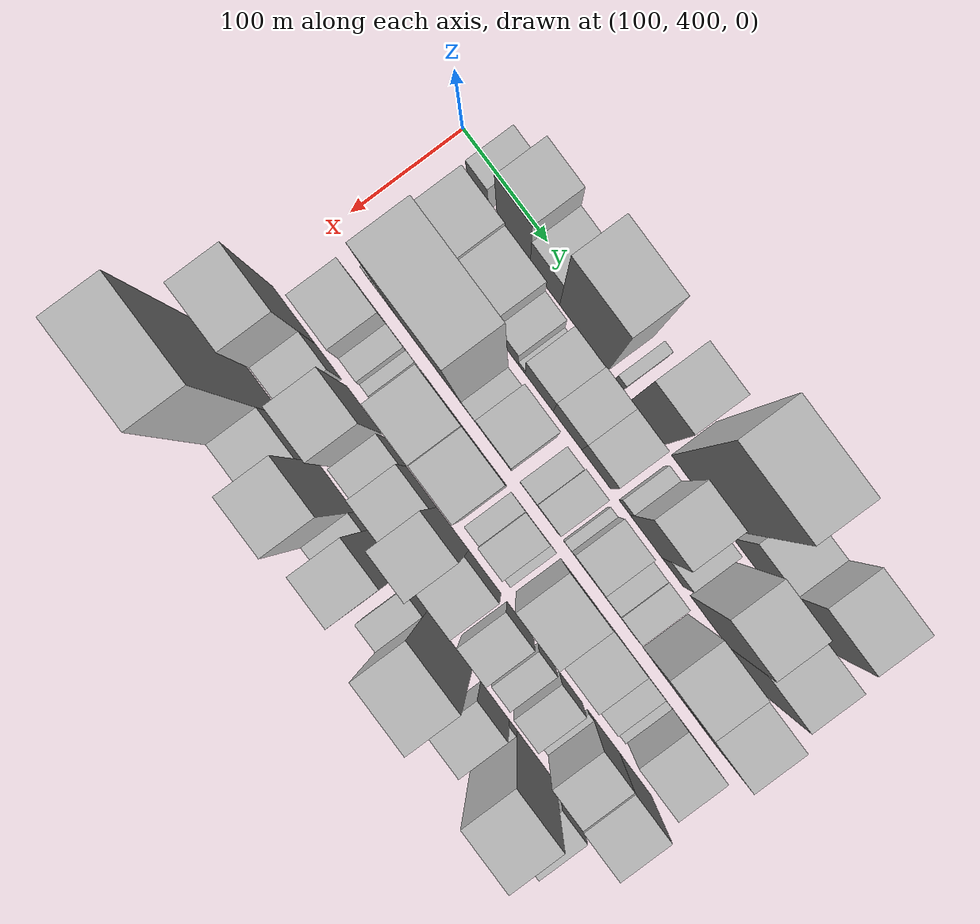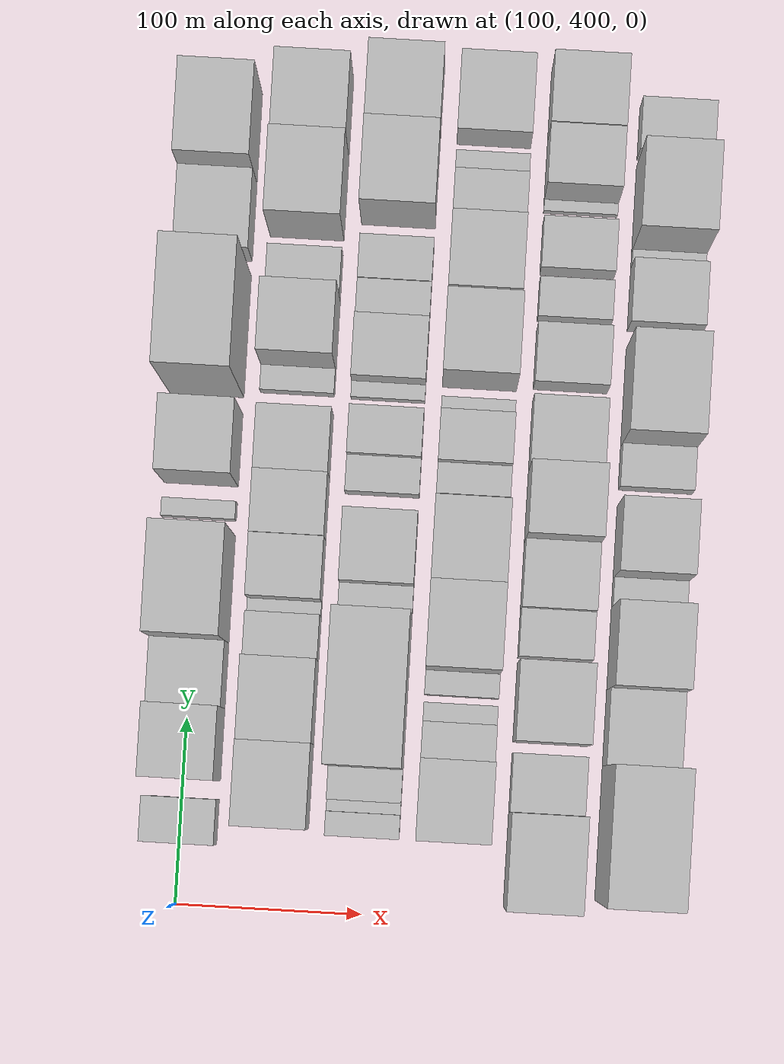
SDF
<sdf version="1.6">
 <world name="default">
  <model name="building_37">
   <static>1</static>
   <pose>100.0000 445.1468 0 0.000000 0.000000 0.000000</pose>
   <link name="link">
    <pose>0 0 24.00 0 0 0</pose>
    <collision name="collision"><geometry><box><size>40.0000 24.3622 48.0000</size></box></geometry></collision>
    <visual name="visual">
     <cast_shadows>0</cast_shadows>
     <geometry><box><size>40.0000 24.3622 48.0000</size></box></geometry>
     <material>
      <script>
       <uri>model://HANNAS_wall/materials/scripts</uri>
       <uri>model://HANNAS_wall/materials/textures</uri>
       <name>vrc/HANNAS_wall</name>
      </script>
     </material>
    </visual>
   </link>
  </model>
  <model name="building_38">
   <static>1</static>
   <pose>100.0000 486.8231 0 0.000000 0.000000 0.000000</pose>
   <link name="link">
    <pose>0 0 52.50 0 0 0</pose>
    <collision name="collision"><geometry><box><size>40.0000 38.9903 105.0000</size></box></geometry></collision>
    <visual name="visual">
     <cast_shadows>0</cast_shadows>
     <geometry><box><size>40.0000 38.9903 105.0000</size></box></geometry>
     <material>
      <script>
       <uri>model://HANNAS_wall/materials/scripts</uri>
       <uri>model://HANNAS_wall/materials/textures</uri>
       <name>vrc/HANNAS_wall</name>
      </script>
     </material>
    </visual>
   </link>
  </model>
  <model name="building_39">
   <static>1</static>
   <pose>100.0000 523.9023 0 0.000000 0.000000 0.000000</pose>
   <link name="link">
    <pose>0 0 33.00 0 0 0</pose>
    <collision name="collision"><geometry><box><size>40.0000 35.1681 66.0000</size></box></geometry></collision>
    <visual name="visual">
     <cast_shadows>0</cast_shadows>
     <geometry><box><size>40.0000 35.1681 66.0000</size></box></geometry>
     <material>
      <script>
       <uri>model://HANNAS_wall/materials/scripts</uri>
       <uri>model://HANNAS_wall/materials/textures</uri>
       <name>vrc/HANNAS_wall</name>
      </script>
     </material>
    </visual>
   </link>
  </model>
  <model name="building_40">
   <static>1</static>
   <pose>100.0000 570.5167 0 0.000000 0.000000 0.000000</pose>
   <link name="link">
    <pose>0 0 75.00 0 0 0</pose>
    <collision name="collision"><geometry><box><size>40.0000 58.0608 150.0000</size></box></geometry></collision>
    <visual name="visual">
     <cast_shadows>0</cast_shadows>
     <geometry><box><size>40.0000 58.0608 150.0000</size></box></geometry>
     <material>
      <script>
       <uri>model://HANNAS_wall/materials/scripts</uri>
       <uri>model://HANNAS_wall/materials/textures</uri>
       <name>vrc/HANNAS_wall</name>
      </script>
     </material>
    </visual>
   </link>
  </model>
  <model name="building_41">
   <static>1</static>
   <pose>100.0000 612.4046 0 0.000000 0.000000 0.000000</pose>
   <link name="link">
    <pose>0 0 12.00 0 0 0</pose>
    <collision name="collision"><geometry><box><size>40.0000 9.7150 24.0000</size></box></geometry></collision>
    <visual name="visual">
     <cast_shadows>0</cast_shadows>
     <geometry><box><size>40.0000 9.7150 24.0000</size></box></geometry>
     <material>
      <script>
       <uri>model://HANNAS_wall/materials/scripts</uri>
       <uri>model://HANNAS_wall/materials/textures</uri>
       <name>vrc/HANNAS_wall</name>
      </script>
     </material>
    </visual>
   </link>
  </model>
  <model name="building_42">
   <static>1</static>
   <pose>100.0000 645.9919 0 0.000000 0.000000 0.000000</pose>
   <link name="link">
    <pose>0 0 63.00 0 0 0</pose>
    <collision name="collision"><geometry><box><size>40.0000 39.4597 126.0000</size></box></geometry></collision>
    <visual name="visual">
     <cast_shadows>0</cast_shadows>
     <geometry><box><size>40.0000 39.4597 126.0000</size></box></geometry>
     <material>
      <script>
       <uri>model://HANNAS_wall/materials/scripts</uri>
       <uri>model://HANNAS_wall/materials/textures</uri>
       <name>vrc/HANNAS_wall</name>
      </script>
     </material>
    </visual>
   </link>
  </model>
  <model name="building_43">
   <static>1</static>
   <pose>100.0000 707.7500 0 0.000000 0.000000 0.000000</pose>
   <link name="link">
    <pose>0 0 106.50 0 0 0</pose>
    <collision name="collision"><geometry><box><size>40.0000 66.0565 213.0000</size></box></geometry></collision>
    <visual name="visual">
     <cast_shadows>0</cast_shadows>
     <geometry><box><size>40.0000 66.0565 213.0000</size></box></geometry>
     <material>
      <script>
       <uri>model://HANNAS_wall/materials/scripts</uri>
       <uri>model://HANNAS_wall/materials/textures</uri>
       <name>vrc/HANNAS_wall</name>
      </script>
     </material>
    </visual>
   </link>
  </model>
  <model name="building_44">
   <static>1</static>
   <pose>100.0000 770.0138 0 0.000000 0.000000 0.000000</pose>
   <link name="link">
    <pose>0 0 37.50 0 0 0</pose>
    <collision name="collision"><geometry><box><size>40.0000 42.4713 75.0000</size></box></geometry></collision>
    <visual name="visual">
     <cast_shadows>0</cast_shadows>
     <geometry><box><size>40.0000 42.4713 75.0000</size></box></geometry>
     <material>
      <script>
       <uri>model://HANNAS_wall/materials/scripts</uri>
       <uri>model://HANNAS_wall/materials/textures</uri>
       <name>vrc/HANNAS_wall</name>
      </script>
     </material>
    </visual>
   </link>
  </model>
  <model name="building_45">
   <static>1</static>
   <pose>100.0000 815.7906 0 0.000000 0.000000 0.000000</pose>
   <link name="link">
    <pose>0 0 67.50 0 0 0</pose>
    <collision name="collision"><geometry><box><size>40.0000 49.0822 135.0000</size></box></geometry></collision>
    <visual name="visual">
     <cast_shadows>0</cast_shadows>
     <geometry><box><size>40.0000 49.0822 135.0000</size></box></geometry>
     <material>
      <script>
       <uri>model://HANNAS_wall/materials/scripts</uri>
       <uri>model://HANNAS_wall/materials/textures</uri>
       <name>vrc/HANNAS_wall</name>
      </script>
     </material>
    </visual>
   </link>
  </model>
  <model name="building_85">
   <static>1</static>
   <pose>149.0000 467.0813 0 0.000000 0.000000 0.000000</pose>
   <link name="link">
    <pose>0 0 42.00 0 0 0</pose>
    <collision name="collision"><geometry><box><size>40.0000 45.5354 84.0000</size></box></geometry></collision>
    <visual name="visual">
     <cast_shadows>0</cast_shadows>
     <geometry><box><size>40.0000 45.5354 84.0000</size></box></geometry>
     <material>
      <script>
       <uri>model://HANNAS_wall/materials/scripts</uri>
       <uri>model://HANNAS_wall/materials/textures</uri>
       <name>vrc/HANNAS_wall</name>
      </script>
     </material>
    </visual>
   </link>
  </model>
  <model name="building_86">
   <static>1</static>
   <pose>149.0000 512.1432 0 0.000000 0.000000 0.000000</pose>
   <link name="link">
    <pose>0 0 39.00 0 0 0</pose>
    <collision name="collision"><geometry><box><size>40.0000 44.5883 78.0000</size></box></geometry></collision>
    <visual name="visual">
     <cast_shadows>0</cast_shadows>
     <geometry><box><size>40.0000 44.5883 78.0000</size></box></geometry>
     <material>
      <script>
       <uri>model://HANNAS_wall/materials/scripts</uri>
       <uri>model://HANNAS_wall/materials/textures</uri>
       <name>vrc/HANNAS_wall</name>
      </script>
     </material>
    </visual>
   </link>
  </model>
  <model name="building_87">
   <static>1</static>
   <pose>149.0000 546.4619 0 0.000000 0.000000 0.000000</pose>
   <link name="link">
    <pose>0 0 24.00 0 0 0</pose>
    <collision name="collision"><geometry><box><size>40.0000 24.0492 48.0000</size></box></geometry></collision>
    <visual name="visual">
     <cast_shadows>0</cast_shadows>
     <geometry><box><size>40.0000 24.0492 48.0000</size></box></geometry>
     <material>
      <script>
       <uri>model://HANNAS_wall/materials/scripts</uri>
       <uri>model://HANNAS_wall/materials/textures</uri>
       <name>vrc/HANNAS_wall</name>
      </script>
     </material>
    </visual>
   </link>
  </model>
  <model name="building_88">
   <static>1</static>
   <pose>149.0000 562.3476 0 0.000000 0.000000 0.000000</pose>
   <link name="link">
    <pose>0 0 9.00 0 0 0</pose>
    <collision name="collision"><geometry><box><size>40.0000 7.7222 18.0000</size></box></geometry></collision>
    <visual name="visual">
     <cast_shadows>0</cast_shadows>
     <geometry><box><size>40.0000 7.7222 18.0000</size></box></geometry>
     <material>
      <script>
       <uri>model://HANNAS_wall/materials/scripts</uri>
       <uri>model://HANNAS_wall/materials/textures</uri>
       <name>vrc/HANNAS_wall</name>
      </script>
     </material>
    </visual>
   </link>
  </model>
  <model name="building_89">
   <static>1</static>
   <pose>149.0000 582.9669 0 0.000000 0.000000 0.000000</pose>
   <link name="link">
    <pose>0 0 31.50 0 0 0</pose>
    <collision name="collision"><geometry><box><size>40.0000 33.5165 63.0000</size></box></geometry></collision>
    <visual name="visual">
     <cast_shadows>0</cast_shadows>
     <geometry><box><size>40.0000 33.5165 63.0000</size></box></geometry>
     <material>
      <script>
       <uri>model://HANNAS_wall/materials/scripts</uri>
       <uri>model://HANNAS_wall/materials/textures</uri>
       <name>vrc/HANNAS_wall</name>
      </script>
     </material>
    </visual>
   </link>
  </model>
  <model name="building_90">
   <static>1</static>
   <pose>149.0000 616.6280 0 0.000000 0.000000 0.000000</pose>
   <link name="link">
    <pose>0 0 33.00 0 0 0</pose>
    <collision name="collision"><geometry><box><size>40.0000 33.8057 66.0000</size></box></geometry></collision>
    <visual name="visual">
     <cast_shadows>0</cast_shadows>
     <geometry><box><size>40.0000 33.8057 66.0000</size></box></geometry>
     <material>
      <script>
       <uri>model://HANNAS_wall/materials/scripts</uri>
       <uri>model://HANNAS_wall/materials/textures</uri>
       <name>vrc/HANNAS_wall</name>
      </script>
     </material>
    </visual>
   </link>
  </model>
  <model name="building_91">
   <static>1</static>
   <pose>149.0000 650.7680 0 0.000000 0.000000 0.000000</pose>
   <link name="link">
    <pose>0 0 33.00 0 0 0</pose>
    <collision name="collision"><geometry><box><size>40.0000 34.4743 66.0000</size></box></geometry></collision>
    <visual name="visual">
     <cast_shadows>0</cast_shadows>
     <geometry><box><size>40.0000 34.4743 66.0000</size></box></geometry>
     <material>
      <script>
       <uri>model://HANNAS_wall/materials/scripts</uri>
       <uri>model://HANNAS_wall/materials/textures</uri>
       <name>vrc/HANNAS_wall</name>
      </script>
     </material>
    </visual>
   </link>
  </model>
  <model name="building_92">
   <static>1</static>
   <pose>149.0000 684.6833 0 0.000000 0.000000 0.000000</pose>
   <link name="link">
    <pose>0 0 13.50 0 0 0</pose>
    <collision name="collision"><geometry><box><size>40.0000 13.3561 27.0000</size></box></geometry></collision>
    <visual name="visual">
     <cast_shadows>0</cast_shadows>
     <geometry><box><size>40.0000 13.3561 27.0000</size></box></geometry>
     <material>
      <script>
       <uri>model://HANNAS_wall/materials/scripts</uri>
       <uri>model://HANNAS_wall/materials/textures</uri>
       <name>vrc/HANNAS_wall</name>
      </script>
     </material>
    </visual>
   </link>
  </model>
  <model name="building_93">
   <static>1</static>
   <pose>149.0000 710.3663 0 0.000000 0.000000 0.000000</pose>
   <link name="link">
    <pose>0 0 63.00 0 0 0</pose>
    <collision name="collision"><geometry><box><size>40.0000 38.0099 126.0000</size></box></geometry></collision>
    <visual name="visual">
     <cast_shadows>0</cast_shadows>
     <geometry><box><size>40.0000 38.0099 126.0000</size></box></geometry>
     <material>
      <script>
       <uri>model://HANNAS_wall/materials/scripts</uri>
       <uri>model://HANNAS_wall/materials/textures</uri>
       <name>vrc/HANNAS_wall</name>
      </script>
     </material>
    </visual>
   </link>
  </model>
  <model name="building_94">
   <static>1</static>
   <pose>149.0000 742.1453 0 0.000000 0.000000 0.000000</pose>
   <link name="link">
    <pose>0 0 22.50 0 0 0</pose>
    <collision name="collision"><geometry><box><size>40.0000 25.5481 45.0000</size></box></geometry></collision>
    <visual name="visual">
     <cast_shadows>0</cast_shadows>
     <geometry><box><size>40.0000 25.5481 45.0000</size></box></geometry>
     <material>
      <script>
       <uri>model://HANNAS_wall/materials/scripts</uri>
       <uri>model://HANNAS_wall/materials/textures</uri>
       <name>vrc/HANNAS_wall</name>
      </script>
     </material>
    </visual>
   </link>
  </model>
  <model name="building_95">
   <static>1</static>
   <pose>149.0000 785.3173 0 0.000000 0.000000 0.000000</pose>
   <link name="link">
    <pose>0 0 67.50 0 0 0</pose>
    <collision name="collision"><geometry><box><size>40.0000 44.7959 135.0000</size></box></geometry></collision>
    <visual name="visual">
     <cast_shadows>0</cast_shadows>
     <geometry><box><size>40.0000 44.7959 135.0000</size></box></geometry>
     <material>
      <script>
       <uri>model://HANNAS_wall/materials/scripts</uri>
       <uri>model://HANNAS_wall/materials/textures</uri>
       <name>vrc/HANNAS_wall</name>
      </script>
     </material>
    </visual>
   </link>
  </model>
  <model name="building_96">
   <static>1</static>
   <pose>149.0000 829.1452 0 0.000000 0.000000 0.000000</pose>
   <link name="link">
    <pose>0 0 58.50 0 0 0</pose>
    <collision name="collision"><geometry><box><size>40.0000 42.8598 117.0000</size></box></geometry></collision>
    <visual name="visual">
     <cast_shadows>0</cast_shadows>
     <geometry><box><size>40.0000 42.8598 117.0000</size></box></geometry>
     <material>
      <script>
       <uri>model://HANNAS_wall/materials/scripts</uri>
       <uri>model://HANNAS_wall/materials/textures</uri>
       <name>vrc/HANNAS_wall</name>
      </script>
     </material>
    </visual>
   </link>
  </model>
  <model name="building_129">
   <static>1</static>
   <pose>198.0000 448.2135 0 0.000000 0.000000 0.000000</pose>
   <link name="link">
    <pose>0 0 13.50 0 0 0</pose>
    <collision name="collision"><geometry><box><size>40.0000 13.1027 27.0000</size></box></geometry></collision>
    <visual name="visual">
     <cast_shadows>0</cast_shadows>
     <geometry><box><size>40.0000 13.1027 27.0000</size></box></geometry>
     <material>
      <script>
       <uri>model://HANNAS_wall/materials/scripts</uri>
       <uri>model://HANNAS_wall/materials/textures</uri>
       <name>vrc/HANNAS_wall</name>
      </script>
     </material>
    </visual>
   </link>
  </model>
  <model name="building_130">
   <static>1</static>
   <pose>198.0000 457.9310 0 0.000000 0.000000 0.000000</pose>
   <link name="link">
    <pose>0 0 7.50 0 0 0</pose>
    <collision name="collision"><geometry><box><size>40.0000 6.3324 15.0000</size></box></geometry></collision>
    <visual name="visual">
     <cast_shadows>0</cast_shadows>
     <geometry><box><size>40.0000 6.3324 15.0000</size></box></geometry>
     <material>
      <script>
       <uri>model://HANNAS_wall/materials/scripts</uri>
       <uri>model://HANNAS_wall/materials/textures</uri>
       <name>vrc/HANNAS_wall</name>
      </script>
     </material>
    </visual>
   </link>
  </model>
  <model name="building_131">
   <static>1</static>
   <pose>198.0000 470.0145 0 0.000000 0.000000 0.000000</pose>
   <link name="link">
    <pose>0 0 16.50 0 0 0</pose>
    <collision name="collision"><geometry><box><size>40.0000 17.8345 33.0000</size></box></geometry></collision>
    <visual name="visual">
     <cast_shadows>0</cast_shadows>
     <geometry><box><size>40.0000 17.8345 33.0000</size></box></geometry>
     <material>
      <script>
       <uri>model://HANNAS_wall/materials/scripts</uri>
       <uri>model://HANNAS_wall/materials/textures</uri>
       <name>vrc/HANNAS_wall</name>
      </script>
     </material>
    </visual>
   </link>
  </model>
  <model name="building_132">
   <static>1</static>
   <pose>198.0000 518.8016 0 0.000000 0.000000 0.000000</pose>
   <link name="link">
    <pose>0 0 106.50 0 0 0</pose>
    <collision name="collision"><geometry><box><size>40.0000 79.7397 213.0000</size></box></geometry></collision>
    <visual name="visual">
     <cast_shadows>0</cast_shadows>
     <geometry><box><size>40.0000 79.7397 213.0000</size></box></geometry>
     <material>
      <script>
       <uri>model://HANNAS_wall/materials/scripts</uri>
       <uri>model://HANNAS_wall/materials/textures</uri>
       <name>vrc/HANNAS_wall</name>
      </script>
     </material>
    </visual>
   </link>
  </model>
  <model name="building_133">
   <static>1</static>
   <pose>198.0000 567.8186 0 0.000000 0.000000 0.000000</pose>
   <link name="link">
    <pose>0 0 16.50 0 0 0</pose>
    <collision name="collision"><geometry><box><size>40.0000 18.2943 33.0000</size></box></geometry></collision>
    <visual name="visual">
     <cast_shadows>0</cast_shadows>
     <geometry><box><size>40.0000 18.2943 33.0000</size></box></geometry>
     <material>
      <script>
       <uri>model://HANNAS_wall/materials/scripts</uri>
       <uri>model://HANNAS_wall/materials/textures</uri>
       <name>vrc/HANNAS_wall</name>
      </script>
     </material>
    </visual>
   </link>
  </model>
  <model name="building_134">
   <static>1</static>
   <pose>198.0000 596.4259 0 0.000000 0.000000 0.000000</pose>
   <link name="link">
    <pose>0 0 33.00 0 0 0</pose>
    <collision name="collision"><geometry><box><size>40.0000 38.9203 66.0000</size></box></geometry></collision>
    <visual name="visual">
     <cast_shadows>0</cast_shadows>
     <geometry><box><size>40.0000 38.9203 66.0000</size></box></geometry>
     <material>
      <script>
       <uri>model://HANNAS_wall/materials/scripts</uri>
       <uri>model://HANNAS_wall/materials/textures</uri>
       <name>vrc/HANNAS_wall</name>
      </script>
     </material>
    </visual>
   </link>
  </model>
  <model name="building_135">
   <static>1</static>
   <pose>198.0000 635.6406 0 0.000000 0.000000 0.000000</pose>
   <link name="link">
    <pose>0 0 18.00 0 0 0</pose>
    <collision name="collision"><geometry><box><size>40.0000 19.5090 36.0000</size></box></geometry></collision>
    <visual name="visual">
     <cast_shadows>0</cast_shadows>
     <geometry><box><size>40.0000 19.5090 36.0000</size></box></geometry>
     <material>
      <script>
       <uri>model://HANNAS_wall/materials/scripts</uri>
       <uri>model://HANNAS_wall/materials/textures</uri>
       <name>vrc/HANNAS_wall</name>
      </script>
     </material>
    </visual>
   </link>
  </model>
  <model name="building_136">
   <static>1</static>
   <pose>198.0000 658.3695 0 0.000000 0.000000 0.000000</pose>
   <link name="link">
    <pose>0 0 25.50 0 0 0</pose>
    <collision name="collision"><geometry><box><size>40.0000 25.9489 51.0000</size></box></geometry></collision>
    <visual name="visual">
     <cast_shadows>0</cast_shadows>
     <geometry><box><size>40.0000 25.9489 51.0000</size></box></geometry>
     <material>
      <script>
       <uri>model://HANNAS_wall/materials/scripts</uri>
       <uri>model://HANNAS_wall/materials/textures</uri>
       <name>vrc/HANNAS_wall</name>
      </script>
     </material>
    </visual>
   </link>
  </model>
  <model name="building_137">
   <static>1</static>
   <pose>198.0000 681.6428 0 0.000000 0.000000 0.000000</pose>
   <link name="link">
    <pose>0 0 10.50 0 0 0</pose>
    <collision name="collision"><geometry><box><size>40.0000 8.5975 21.0000</size></box></geometry></collision>
    <visual name="visual">
     <cast_shadows>0</cast_shadows>
     <geometry><box><size>40.0000 8.5975 21.0000</size></box></geometry>
     <material>
      <script>
       <uri>model://HANNAS_wall/materials/scripts</uri>
       <uri>model://HANNAS_wall/materials/textures</uri>
       <name>vrc/HANNAS_wall</name>
      </script>
     </material>
    </visual>
   </link>
  </model>
  <model name="building_138">
   <static>1</static>
   <pose>198.0000 702.7209 0 0.000000 0.000000 0.000000</pose>
   <link name="link">
    <pose>0 0 31.50 0 0 0</pose>
    <collision name="collision"><geometry><box><size>40.0000 33.5588 63.0000</size></box></geometry></collision>
    <visual name="visual">
     <cast_shadows>0</cast_shadows>
     <geometry><box><size>40.0000 33.5588 63.0000</size></box></geometry>
     <material>
      <script>
       <uri>model://HANNAS_wall/materials/scripts</uri>
       <uri>model://HANNAS_wall/materials/textures</uri>
       <name>vrc/HANNAS_wall</name>
      </script>
     </material>
    </visual>
   </link>
  </model>
  <model name="building_139">
   <static>1</static>
   <pose>198.0000 729.7193 0 0.000000 0.000000 0.000000</pose>
   <link name="link">
    <pose>0 0 19.50 0 0 0</pose>
    <collision name="collision"><geometry><box><size>40.0000 20.4379 39.0000</size></box></geometry></collision>
    <visual name="visual">
     <cast_shadows>0</cast_shadows>
     <geometry><box><size>40.0000 20.4379 39.0000</size></box></geometry>
     <material>
      <script>
       <uri>model://HANNAS_wall/materials/scripts</uri>
       <uri>model://HANNAS_wall/materials/textures</uri>
       <name>vrc/HANNAS_wall</name>
      </script>
     </material>
    </visual>
   </link>
  </model>
  <model name="building_140">
   <static>1</static>
   <pose>198.0000 751.7056 0 0.000000 0.000000 0.000000</pose>
   <link name="link">
    <pose>0 0 21.00 0 0 0</pose>
    <collision name="collision"><geometry><box><size>40.0000 23.5346 42.0000</size></box></geometry></collision>
    <visual name="visual">
     <cast_shadows>0</cast_shadows>
     <geometry><box><size>40.0000 23.5346 42.0000</size></box></geometry>
     <material>
      <script>
       <uri>model://HANNAS_wall/materials/scripts</uri>
       <uri>model://HANNAS_wall/materials/textures</uri>
       <name>vrc/HANNAS_wall</name>
      </script>
     </material>
    </visual>
   </link>
  </model>
  <model name="building_141">
   <static>1</static>
   <pose>198.0000 794.8242 0 0.000000 0.000000 0.000000</pose>
   <link name="link">
    <pose>0 0 63.00 0 0 0</pose>
    <collision name="collision"><geometry><box><size>40.0000 44.7025 126.0000</size></box></geometry></collision>
    <visual name="visual">
     <cast_shadows>0</cast_shadows>
     <geometry><box><size>40.0000 44.7025 126.0000</size></box></geometry>
     <material>
      <script>
       <uri>model://HANNAS_wall/materials/scripts</uri>
       <uri>model://HANNAS_wall/materials/textures</uri>
       <name>vrc/HANNAS_wall</name>
      </script>
     </material>
    </visual>
   </link>
  </model>
  <model name="building_142">
   <static>1</static>
   <pose>198.0000 837.4490 0 0.000000 0.000000 0.000000</pose>
   <link name="link">
    <pose>0 0 60.00 0 0 0</pose>
    <collision name="collision"><geometry><box><size>40.0000 40.5471 120.0000</size></box></geometry></collision>
    <visual name="visual">
     <cast_shadows>0</cast_shadows>
     <geometry><box><size>40.0000 40.5471 120.0000</size></box></geometry>
     <material>
      <script>
       <uri>model://HANNAS_wall/materials/scripts</uri>
       <uri>model://HANNAS_wall/materials/textures</uri>
       <name>vrc/HANNAS_wall</name>
      </script>
     </material>
    </visual>
   </link>
  </model>
  <model name="building_183">
   <static>1</static>
   <pose>247.0000 463.9905 0 0.000000 0.000000 0.000000</pose>
   <link name="link">
    <pose>0 0 39.00 0 0 0</pose>
    <collision name="collision"><geometry><box><size>40.0000 43.6089 78.0000</size></box></geometry></collision>
    <visual name="visual">
     <cast_shadows>0</cast_shadows>
     <geometry><box><size>40.0000 43.6089 78.0000</size></box></geometry>
     <material>
      <script>
       <uri>model://HANNAS_wall/materials/scripts</uri>
       <uri>model://HANNAS_wall/materials/textures</uri>
       <name>vrc/HANNAS_wall</name>
      </script>
     </material>
    </visual>
   </link>
  </model>
  <model name="building_184">
   <static>1</static>
   <pose>247.0000 495.7289 0 0.000000 0.000000 0.000000</pose>
   <link name="link">
    <pose>0 0 18.00 0 0 0</pose>
    <collision name="collision"><geometry><box><size>40.0000 19.8679 36.0000</size></box></geometry></collision>
    <visual name="visual">
     <cast_shadows>0</cast_shadows>
     <geometry><box><size>40.0000 19.8679 36.0000</size></box></geometry>
     <material>
      <script>
       <uri>model://HANNAS_wall/materials/scripts</uri>
       <uri>model://HANNAS_wall/materials/textures</uri>
       <name>vrc/HANNAS_wall</name>
      </script>
     </material>
    </visual>
   </link>
  </model>
  <model name="building_185">
   <static>1</static>
   <pose>247.0000 510.8103 0 0.000000 0.000000 0.000000</pose>
   <link name="link">
    <pose>0 0 10.50 0 0 0</pose>
    <collision name="collision"><geometry><box><size>40.0000 10.2950 21.0000</size></box></geometry></collision>
    <visual name="visual">
     <cast_shadows>0</cast_shadows>
     <geometry><box><size>40.0000 10.2950 21.0000</size></box></geometry>
     <material>
      <script>
       <uri>model://HANNAS_wall/materials/scripts</uri>
       <uri>model://HANNAS_wall/materials/textures</uri>
       <name>vrc/HANNAS_wall</name>
      </script>
     </material>
    </visual>
   </link>
  </model>
  <model name="building_186">
   <static>1</static>
   <pose>247.0000 526.5223 0 0.000000 0.000000 0.000000</pose>
   <link name="link">
    <pose>0 0 13.50 0 0 0</pose>
    <collision name="collision"><geometry><box><size>40.0000 13.1291 27.0000</size></box></geometry></collision>
    <visual name="visual">
     <cast_shadows>0</cast_shadows>
     <geometry><box><size>40.0000 13.1291 27.0000</size></box></geometry>
     <material>
      <script>
       <uri>model://HANNAS_wall/materials/scripts</uri>
       <uri>model://HANNAS_wall/materials/textures</uri>
       <name>vrc/HANNAS_wall</name>
      </script>
     </material>
    </visual>
   </link>
  </model>
  <model name="building_187">
   <static>1</static>
   <pose>247.0000 555.9133 0 0.000000 0.000000 0.000000</pose>
   <link name="link">
    <pose>0 0 60.00 0 0 0</pose>
    <collision name="collision"><geometry><box><size>40.0000 45.6528 120.0000</size></box></geometry></collision>
    <visual name="visual">
     <cast_shadows>0</cast_shadows>
     <geometry><box><size>40.0000 45.6528 120.0000</size></box></geometry>
     <material>
      <script>
       <uri>model://HANNAS_wall/materials/scripts</uri>
       <uri>model://HANNAS_wall/materials/textures</uri>
       <name>vrc/HANNAS_wall</name>
      </script>
     </material>
    </visual>
   </link>
  </model>
  <model name="building_188">
   <static>1</static>
   <pose>247.0000 600.7675 0 0.000000 0.000000 0.000000</pose>
   <link name="link">
    <pose>0 0 57.00 0 0 0</pose>
    <collision name="collision"><geometry><box><size>40.0000 44.0557 114.0000</size></box></geometry></collision>
    <visual name="visual">
     <cast_shadows>0</cast_shadows>
     <geometry><box><size>40.0000 44.0557 114.0000</size></box></geometry>
     <material>
      <script>
       <uri>model://HANNAS_wall/materials/scripts</uri>
       <uri>model://HANNAS_wall/materials/textures</uri>
       <name>vrc/HANNAS_wall</name>
      </script>
     </material>
    </visual>
   </link>
  </model>
  <model name="building_189">
   <static>1</static>
   <pose>247.0000 636.1850 0 0.000000 0.000000 0.000000</pose>
   <link name="link">
    <pose>0 0 15.00 0 0 0</pose>
    <collision name="collision"><geometry><box><size>40.0000 16.7792 30.0000</size></box></geometry></collision>
    <visual name="visual">
     <cast_shadows>0</cast_shadows>
     <geometry><box><size>40.0000 16.7792 30.0000</size></box></geometry>
     <material>
      <script>
       <uri>model://HANNAS_wall/materials/scripts</uri>
       <uri>model://HANNAS_wall/materials/textures</uri>
       <name>vrc/HANNAS_wall</name>
      </script>
     </material>
    </visual>
   </link>
  </model>
  <model name="building_190">
   <static>1</static>
   <pose>247.0000 658.2993 0 0.000000 0.000000 0.000000</pose>
   <link name="link">
    <pose>0 0 25.50 0 0 0</pose>
    <collision name="collision"><geometry><box><size>40.0000 27.4495 51.0000</size></box></geometry></collision>
    <visual name="visual">
     <cast_shadows>0</cast_shadows>
     <geometry><box><size>40.0000 27.4495 51.0000</size></box></geometry>
     <material>
      <script>
       <uri>model://HANNAS_wall/materials/scripts</uri>
       <uri>model://HANNAS_wall/materials/textures</uri>
       <name>vrc/HANNAS_wall</name>
      </script>
     </material>
    </visual>
   </link>
  </model>
  <model name="building_191">
   <static>1</static>
   <pose>247.0000 676.4026 0 0.000000 0.000000 0.000000</pose>
   <link name="link">
    <pose>0 0 9.00 0 0 0</pose>
    <collision name="collision"><geometry><box><size>40.0000 8.7570 18.0000</size></box></geometry></collision>
    <visual name="visual">
     <cast_shadows>0</cast_shadows>
     <geometry><box><size>40.0000 8.7570 18.0000</size></box></geometry>
     <material>
      <script>
       <uri>model://HANNAS_wall/materials/scripts</uri>
       <uri>model://HANNAS_wall/materials/textures</uri>
       <name>vrc/HANNAS_wall</name>
      </script>
     </material>
    </visual>
   </link>
  </model>
  <model name="building_192">
   <static>1</static>
   <pose>247.0000 708.5078 0 0.000000 0.000000 0.000000</pose>
   <link name="link">
    <pose>0 0 61.50 0 0 0</pose>
    <collision name="collision"><geometry><box><size>40.0000 43.4534 123.0000</size></box></geometry></collision>
    <visual name="visual">
     <cast_shadows>0</cast_shadows>
     <geometry><box><size>40.0000 43.4534 123.0000</size></box></geometry>
     <material>
      <script>
       <uri>model://HANNAS_wall/materials/scripts</uri>
       <uri>model://HANNAS_wall/materials/textures</uri>
       <name>vrc/HANNAS_wall</name>
      </script>
     </material>
    </visual>
   </link>
  </model>
  <model name="building_193">
   <static>1</static>
   <pose>247.0000 756.5614 0 0.000000 0.000000 0.000000</pose>
   <link name="link">
    <pose>0 0 34.50 0 0 0</pose>
    <collision name="collision"><geometry><box><size>40.0000 40.6538 69.0000</size></box></geometry></collision>
    <visual name="visual">
     <cast_shadows>0</cast_shadows>
     <geometry><box><size>40.0000 40.6538 69.0000</size></box></geometry>
     <material>
      <script>
       <uri>model://HANNAS_wall/materials/scripts</uri>
       <uri>model://HANNAS_wall/materials/textures</uri>
       <name>vrc/HANNAS_wall</name>
      </script>
     </material>
    </visual>
   </link>
  </model>
  <model name="building_194">
   <static>1</static>
   <pose>247.0000 789.2081 0 0.000000 0.000000 0.000000</pose>
   <link name="link">
    <pose>0 0 22.50 0 0 0</pose>
    <collision name="collision"><geometry><box><size>40.0000 24.6395 45.0000</size></box></geometry></collision>
    <visual name="visual">
     <cast_shadows>0</cast_shadows>
     <geometry><box><size>40.0000 24.6395 45.0000</size></box></geometry>
     <material>
      <script>
       <uri>model://HANNAS_wall/materials/scripts</uri>
       <uri>model://HANNAS_wall/materials/textures</uri>
       <name>vrc/HANNAS_wall</name>
      </script>
     </material>
    </visual>
   </link>
  </model>
  <model name="building_195">
   <static>1</static>
   <pose>247.0000 807.3344 0 0.000000 0.000000 0.000000</pose>
   <link name="link">
    <pose>0 0 13.50 0 0 0</pose>
    <collision name="collision"><geometry><box><size>40.0000 11.6131 27.0000</size></box></geometry></collision>
    <visual name="visual">
     <cast_shadows>0</cast_shadows>
     <geometry><box><size>40.0000 11.6131 27.0000</size></box></geometry>
     <material>
      <script>
       <uri>model://HANNAS_wall/materials/scripts</uri>
       <uri>model://HANNAS_wall/materials/textures</uri>
       <name>vrc/HANNAS_wall</name>
      </script>
     </material>
    </visual>
   </link>
  </model>
  <model name="building_196">
   <static>1</static>
   <pose>247.0000 840.3985 0 0.000000 0.000000 0.000000</pose>
   <link name="link">
    <pose>0 0 36.00 0 0 0</pose>
    <collision name="collision"><geometry><box><size>40.0000 42.5150 72.0000</size></box></geometry></collision>
    <visual name="visual">
     <cast_shadows>0</cast_shadows>
     <geometry><box><size>40.0000 42.5150 72.0000</size></box></geometry>
     <material>
      <script>
       <uri>model://HANNAS_wall/materials/scripts</uri>
       <uri>model://HANNAS_wall/materials/textures</uri>
       <name>vrc/HANNAS_wall</name>
      </script>
     </material>
    </visual>
   </link>
  </model>
  <model name="building_233">
   <static>1</static>
   <pose>296.0000 434.5458 0 0.000000 0.000000 0.000000</pose>
   <link name="link">
    <pose>0 0 64.50 0 0 0</pose>
    <collision name="collision"><geometry><box><size>40.0000 51.1126 129.0000</size></box></geometry></collision>
    <visual name="visual">
     <cast_shadows>0</cast_shadows>
     <geometry><box><size>40.0000 51.1126 129.0000</size></box></geometry>
     <material>
      <script>
       <uri>model://HANNAS_wall/materials/scripts</uri>
       <uri>model://HANNAS_wall/materials/textures</uri>
       <name>vrc/HANNAS_wall</name>
      </script>
     </material>
    </visual>
   </link>
  </model>
  <model name="building_234">
   <static>1</static>
   <pose>296.0000 475.7473 0 0.000000 0.000000 0.000000</pose>
   <link name="link">
    <pose>0 0 28.50 0 0 0</pose>
    <collision name="collision"><geometry><box><size>40.0000 31.2906 57.0000</size></box></geometry></collision>
    <visual name="visual">
     <cast_shadows>0</cast_shadows>
     <geometry><box><size>40.0000 31.2906 57.0000</size></box></geometry>
     <material>
      <script>
       <uri>model://HANNAS_wall/materials/scripts</uri>
       <uri>model://HANNAS_wall/materials/textures</uri>
       <name>vrc/HANNAS_wall</name>
      </script>
     </material>
    </visual>
   </link>
  </model>
  <model name="building_235">
   <static>1</static>
   <pose>296.0000 518.6181 0 0.000000 0.000000 0.000000</pose>
   <link name="link">
    <pose>0 0 55.50 0 0 0</pose>
    <collision name="collision"><geometry><box><size>40.0000 42.4508 111.0000</size></box></geometry></collision>
    <visual name="visual">
     <cast_shadows>0</cast_shadows>
     <geometry><box><size>40.0000 42.4508 111.0000</size></box></geometry>
     <material>
      <script>
       <uri>model://HANNAS_wall/materials/scripts</uri>
       <uri>model://HANNAS_wall/materials/textures</uri>
       <name>vrc/HANNAS_wall</name>
      </script>
     </material>
    </visual>
   </link>
  </model>
  <model name="building_236">
   <static>1</static>
   <pose>296.0000 555.7321 0 0.000000 0.000000 0.000000</pose>
   <link name="link">
    <pose>0 0 24.00 0 0 0</pose>
    <collision name="collision"><geometry><box><size>40.0000 25.7773 48.0000</size></box></geometry></collision>
    <visual name="visual">
     <cast_shadows>0</cast_shadows>
     <geometry><box><size>40.0000 25.7773 48.0000</size></box></geometry>
     <material>
      <script>
       <uri>model://HANNAS_wall/materials/scripts</uri>
       <uri>model://HANNAS_wall/materials/textures</uri>
       <name>vrc/HANNAS_wall</name>
      </script>
     </material>
    </visual>
   </link>
  </model>
  <model name="building_237">
   <static>1</static>
   <pose>296.0000 586.7100 0 0.000000 0.000000 0.000000</pose>
   <link name="link">
    <pose>0 0 33.00 0 0 0</pose>
    <collision name="collision"><geometry><box><size>40.0000 36.1784 66.0000</size></box></geometry></collision>
    <visual name="visual">
     <cast_shadows>0</cast_shadows>
     <geometry><box><size>40.0000 36.1784 66.0000</size></box></geometry>
     <material>
      <script>
       <uri>model://HANNAS_wall/materials/scripts</uri>
       <uri>model://HANNAS_wall/materials/textures</uri>
       <name>vrc/HANNAS_wall</name>
      </script>
     </material>
    </visual>
   </link>
  </model>
  <model name="building_238">
   <static>1</static>
   <pose>296.0000 623.9506 0 0.000000 0.000000 0.000000</pose>
   <link name="link">
    <pose>0 0 63.00 0 0 0</pose>
    <collision name="collision"><geometry><box><size>40.0000 38.3028 126.0000</size></box></geometry></collision>
    <visual name="visual">
     <cast_shadows>0</cast_shadows>
     <geometry><box><size>40.0000 38.3028 126.0000</size></box></geometry>
     <material>
      <script>
       <uri>model://HANNAS_wall/materials/scripts</uri>
       <uri>model://HANNAS_wall/materials/textures</uri>
       <name>vrc/HANNAS_wall</name>
      </script>
     </material>
    </visual>
   </link>
  </model>
  <model name="building_239">
   <static>1</static>
   <pose>296.0000 662.2507 0 0.000000 0.000000 0.000000</pose>
   <link name="link">
    <pose>0 0 33.00 0 0 0</pose>
    <collision name="collision"><geometry><box><size>40.0000 38.2975 66.0000</size></box></geometry></collision>
    <visual name="visual">
     <cast_shadows>0</cast_shadows>
     <geometry><box><size>40.0000 38.2975 66.0000</size></box></geometry>
     <material>
      <script>
       <uri>model://HANNAS_wall/materials/scripts</uri>
       <uri>model://HANNAS_wall/materials/textures</uri>
       <name>vrc/HANNAS_wall</name>
      </script>
     </material>
    </visual>
   </link>
  </model>
  <model name="building_240">
   <static>1</static>
   <pose>296.0000 704.3115 0 0.000000 0.000000 0.000000</pose>
   <link name="link">
    <pose>0 0 31.50 0 0 0</pose>
    <collision name="collision"><geometry><box><size>40.0000 31.8241 63.0000</size></box></geometry></collision>
    <visual name="visual">
     <cast_shadows>0</cast_shadows>
     <geometry><box><size>40.0000 31.8241 63.0000</size></box></geometry>
     <material>
      <script>
       <uri>model://HANNAS_wall/materials/scripts</uri>
       <uri>model://HANNAS_wall/materials/textures</uri>
       <name>vrc/HANNAS_wall</name>
      </script>
     </material>
    </visual>
   </link>
  </model>
  <model name="building_241">
   <static>1</static>
   <pose>296.0000 735.9259 0 0.000000 0.000000 0.000000</pose>
   <link name="link">
    <pose>0 0 19.50 0 0 0</pose>
    <collision name="collision"><geometry><box><size>40.0000 21.4048 39.0000</size></box></geometry></collision>
    <visual name="visual">
     <cast_shadows>0</cast_shadows>
     <geometry><box><size>40.0000 21.4048 39.0000</size></box></geometry>
     <material>
      <script>
       <uri>model://HANNAS_wall/materials/scripts</uri>
       <uri>model://HANNAS_wall/materials/textures</uri>
       <name>vrc/HANNAS_wall</name>
      </script>
     </material>
    </visual>
   </link>
  </model>
  <model name="building_242">
   <static>1</static>
   <pose>296.0000 764.4748 0 0.000000 0.000000 0.000000</pose>
   <link name="link">
    <pose>0 0 24.00 0 0 0</pose>
    <collision name="collision"><geometry><box><size>40.0000 27.6929 48.0000</size></box></geometry></collision>
    <visual name="visual">
     <cast_shadows>0</cast_shadows>
     <geometry><box><size>40.0000 27.6929 48.0000</size></box></geometry>
     <material>
      <script>
       <uri>model://HANNAS_wall/materials/scripts</uri>
       <uri>model://HANNAS_wall/materials/textures</uri>
       <name>vrc/HANNAS_wall</name>
      </script>
     </material>
    </visual>
   </link>
  </model>
  <model name="building_243">
   <static>1</static>
   <pose>296.0000 787.3896 0 0.000000 0.000000 0.000000</pose>
   <link name="link">
    <pose>0 0 7.50 0 0 0</pose>
    <collision name="collision"><geometry><box><size>40.0000 6.1368 15.0000</size></box></geometry></collision>
    <visual name="visual">
     <cast_shadows>0</cast_shadows>
     <geometry><box><size>40.0000 6.1368 15.0000</size></box></geometry>
     <material>
      <script>
       <uri>model://HANNAS_wall/materials/scripts</uri>
       <uri>model://HANNAS_wall/materials/textures</uri>
       <name>vrc/HANNAS_wall</name>
      </script>
     </material>
    </visual>
   </link>
  </model>
  <model name="building_244">
   <static>1</static>
   <pose>296.0000 806.4134 0 0.000000 0.000000 0.000000</pose>
   <link name="link">
    <pose>0 0 48.00 0 0 0</pose>
    <collision name="collision"><geometry><box><size>40.0000 31.9109 96.0000</size></box></geometry></collision>
    <visual name="visual">
     <cast_shadows>0</cast_shadows>
     <geometry><box><size>40.0000 31.9109 96.0000</size></box></geometry>
     <material>
      <script>
       <uri>model://HANNAS_wall/materials/scripts</uri>
       <uri>model://HANNAS_wall/materials/textures</uri>
       <name>vrc/HANNAS_wall</name>
      </script>
     </material>
    </visual>
   </link>
  </model>
  <model name="building_245">
   <static>1</static>
   <pose>296.0000 841.3617 0 0.000000 0.000000 0.000000</pose>
   <link name="link">
    <pose>0 0 49.50 0 0 0</pose>
    <collision name="collision"><geometry><box><size>40.0000 37.9857 99.0000</size></box></geometry></collision>
    <visual name="visual">
     <cast_shadows>0</cast_shadows>
     <geometry><box><size>40.0000 37.9857 99.0000</size></box></geometry>
     <material>
      <script>
       <uri>model://HANNAS_wall/materials/scripts</uri>
       <uri>model://HANNAS_wall/materials/textures</uri>
       <name>vrc/HANNAS_wall</name>
      </script>
     </material>
    </visual>
   </link>
  </model>
  <model name="building_284">
   <static>1</static>
   <pose>345.0000 451.3696 0 0.000000 0.000000 0.000000</pose>
   <link name="link">
    <pose>0 0 105.00 0 0 0</pose>
    <collision name="collision"><geometry><box><size>40.0000 72.3131 210.0000</size></box></geometry></collision>
    <visual name="visual">
     <cast_shadows>0</cast_shadows>
     <geometry><box><size>40.0000 72.3131 210.0000</size></box></geometry>
     <material>
      <script>
       <uri>model://HANNAS_wall/materials/scripts</uri>
       <uri>model://HANNAS_wall/materials/textures</uri>
       <name>vrc/HANNAS_wall</name>
      </script>
     </material>
    </visual>
   </link>
  </model>
  <model name="building_285">
   <static>1</static>
   <pose>345.0000 507.9676 0 0.000000 0.000000 0.000000</pose>
   <link name="link">
    <pose>0 0 37.50 0 0 0</pose>
    <collision name="collision"><geometry><box><size>40.0000 40.8828 75.0000</size></box></geometry></collision>
    <visual name="visual">
     <cast_shadows>0</cast_shadows>
     <geometry><box><size>40.0000 40.8828 75.0000</size></box></geometry>
     <material>
      <script>
       <uri>model://HANNAS_wall/materials/scripts</uri>
       <uri>model://HANNAS_wall/materials/textures</uri>
       <name>vrc/HANNAS_wall</name>
      </script>
     </material>
    </visual>
   </link>
  </model>
  <model name="building_286">
   <static>1</static>
   <pose>345.0000 550.5382 0 0.000000 0.000000 0.000000</pose>
   <link name="link">
    <pose>0 0 70.50 0 0 0</pose>
    <collision name="collision"><geometry><box><size>40.0000 44.2583 141.0000</size></box></geometry></collision>
    <visual name="visual">
     <cast_shadows>0</cast_shadows>
     <geometry><box><size>40.0000 44.2583 141.0000</size></box></geometry>
     <material>
      <script>
       <uri>model://HANNAS_wall/materials/scripts</uri>
       <uri>model://HANNAS_wall/materials/textures</uri>
       <name>vrc/HANNAS_wall</name>
      </script>
     </material>
    </visual>
   </link>
  </model>
  <model name="building_287">
   <static>1</static>
   <pose>345.0000 580.6310 0 0.000000 0.000000 0.000000</pose>
   <link name="link">
    <pose>0 0 15.00 0 0 0</pose>
    <collision name="collision"><geometry><box><size>40.0000 15.9274 30.0000</size></box></geometry></collision>
    <visual name="visual">
     <cast_shadows>0</cast_shadows>
     <geometry><box><size>40.0000 15.9274 30.0000</size></box></geometry>
     <material>
      <script>
       <uri>model://HANNAS_wall/materials/scripts</uri>
       <uri>model://HANNAS_wall/materials/textures</uri>
       <name>vrc/HANNAS_wall</name>
      </script>
     </material>
    </visual>
   </link>
  </model>
  <model name="building_288">
   <static>1</static>
   <pose>345.0000 608.1469 0 0.000000 0.000000 0.000000</pose>
   <link name="link">
    <pose>0 0 57.00 0 0 0</pose>
    <collision name="collision"><geometry><box><size>40.0000 39.1044 114.0000</size></box></geometry></collision>
    <visual name="visual">
     <cast_shadows>0</cast_shadows>
     <geometry><box><size>40.0000 39.1044 114.0000</size></box></geometry>
     <material>
      <script>
       <uri>model://HANNAS_wall/materials/scripts</uri>
       <uri>model://HANNAS_wall/materials/textures</uri>
       <name>vrc/HANNAS_wall</name>
      </script>
     </material>
    </visual>
   </link>
  </model>
  <model name="building_289">
   <static>1</static>
   <pose>345.0000 648.2925 0 0.000000 0.000000 0.000000</pose>
   <link name="link">
    <pose>0 0 19.50 0 0 0</pose>
    <collision name="collision"><geometry><box><size>40.0000 23.1867 39.0000</size></box></geometry></collision>
    <visual name="visual">
     <cast_shadows>0</cast_shadows>
     <geometry><box><size>40.0000 23.1867 39.0000</size></box></geometry>
     <material>
      <script>
       <uri>model://HANNAS_wall/materials/scripts</uri>
       <uri>model://HANNAS_wall/materials/textures</uri>
       <name>vrc/HANNAS_wall</name>
      </script>
     </material>
    </visual>
   </link>
  </model>
  <model name="building_290">
   <static>1</static>
   <pose>345.0000 686.4179 0 0.000000 0.000000 0.000000</pose>
   <link name="link">
    <pose>0 0 72.00 0 0 0</pose>
    <collision name="collision"><geometry><box><size>40.0000 53.0641 144.0000</size></box></geometry></collision>
    <visual name="visual">
     <cast_shadows>0</cast_shadows>
     <geometry><box><size>40.0000 53.0641 144.0000</size></box></geometry>
     <material>
      <script>
       <uri>model://HANNAS_wall/materials/scripts</uri>
       <uri>model://HANNAS_wall/materials/textures</uri>
       <name>vrc/HANNAS_wall</name>
      </script>
     </material>
    </visual>
   </link>
  </model>
  <model name="building_291">
   <static>1</static>
   <pose>345.0000 739.9064 0 0.000000 0.000000 0.000000</pose>
   <link name="link">
    <pose>0 0 33.00 0 0 0</pose>
    <collision name="collision"><geometry><box><size>40.0000 33.9128 66.0000</size></box></geometry></collision>
    <visual name="visual">
     <cast_shadows>0</cast_shadows>
     <geometry><box><size>40.0000 33.9128 66.0000</size></box></geometry>
     <material>
      <script>
       <uri>model://HANNAS_wall/materials/scripts</uri>
       <uri>model://HANNAS_wall/materials/textures</uri>
       <name>vrc/HANNAS_wall</name>
      </script>
     </material>
    </visual>
   </link>
  </model>
  <model name="building_292">
   <static>1</static>
   <pose>345.0000 761.2782 0 0.000000 0.000000 0.000000</pose>
   <link name="link">
    <pose>0 0 10.50 0 0 0</pose>
    <collision name="collision"><geometry><box><size>40.0000 8.8308 21.0000</size></box></geometry></collision>
    <visual name="visual">
     <cast_shadows>0</cast_shadows>
     <geometry><box><size>40.0000 8.8308 21.0000</size></box></geometry>
     <material>
      <script>
       <uri>model://HANNAS_wall/materials/scripts</uri>
       <uri>model://HANNAS_wall/materials/textures</uri>
       <name>vrc/HANNAS_wall</name>
      </script>
     </material>
    </visual>
   </link>
  </model>
  <model name="building_293">
   <static>1</static>
   <pose>345.0000 789.0178 0 0.000000 0.000000 0.000000</pose>
   <link name="link">
    <pose>0 0 70.50 0 0 0</pose>
    <collision name="collision"><geometry><box><size>40.0000 46.6485 141.0000</size></box></geometry></collision>
    <visual name="visual">
     <cast_shadows>0</cast_shadows>
     <geometry><box><size>40.0000 46.6485 141.0000</size></box></geometry>
     <material>
      <script>
       <uri>model://HANNAS_wall/materials/scripts</uri>
       <uri>model://HANNAS_wall/materials/textures</uri>
       <name>vrc/HANNAS_wall</name>
      </script>
     </material>
    </visual>
   </link>
  </model>
  <model name="building_294">
   <static>1</static>
   <pose>345.0000 830.3772 0 0.000000 0.000000 0.000000</pose>
   <link name="link">
    <pose>0 0 27.00 0 0 0</pose>
    <collision name="collision"><geometry><box><size>40.0000 28.0703 54.0000</size></box></geometry></collision>
    <visual name="visual">
     <cast_shadows>0</cast_shadows>
     <geometry><box><size>40.0000 28.0703 54.0000</size></box></geometry>
     <material>
      <script>
       <uri>model://HANNAS_wall/materials/scripts</uri>
       <uri>model://HANNAS_wall/materials/textures</uri>
       <name>vrc/HANNAS_wall</name>
      </script>
     </material>
    </visual>
   </link>
  </model>
 </world>
</sdf>
